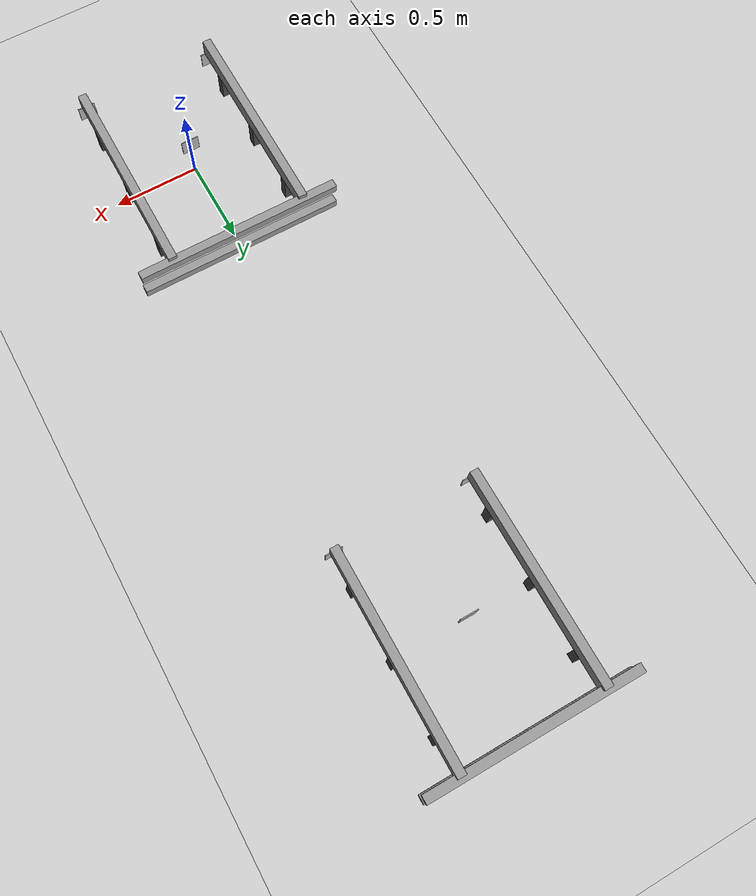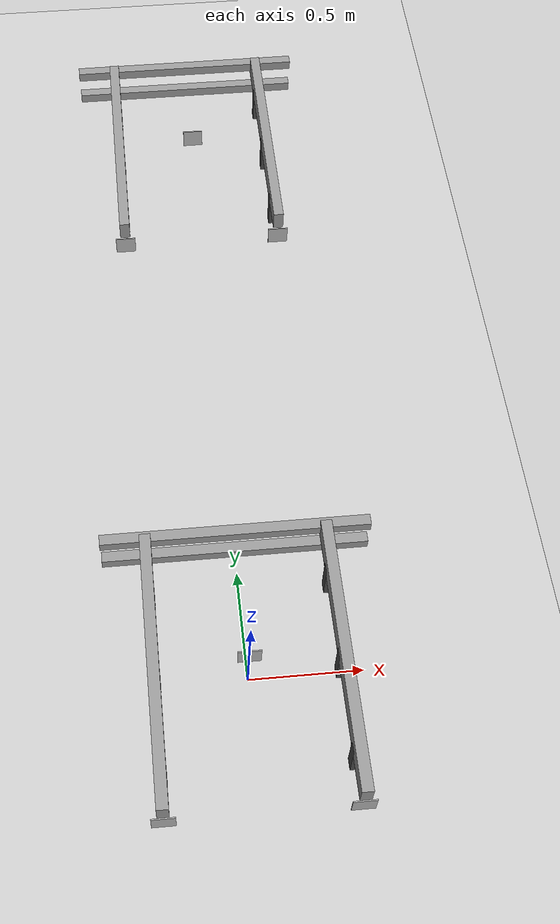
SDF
<?xml version="1.0" ?>
<sdf version="1.9">
  <world name="docking_world">

    <scene>
      <shadows>false</shadows>
    </scene>
    <light name="sun_direct" type="directional">
      <cast_shadows>false</cast_shadows>
      <pose>0 0 10 0 0 0</pose>
      <diffuse>1 1 1 1</diffuse>
      <specular>0.2 0.2 0.2 1</specular>
      <direction>-0.5 0.1 -1</direction>
    </light>
    <plugin filename="gz-sim-physics-system" name="gz::sim::systems::Physics"/>
    <plugin filename="gz-sim-scene-broadcaster-system" name="gz::sim::systems::SceneBroadcaster">
      <dynamic_pose_hertz>30</dynamic_pose_hertz>
      <state_hertz>30</state_hertz>
    </plugin>
    <plugin filename="gz-sim-sensors-system" name="gz::sim::systems::Sensors">
      <render_engine>ogre2</render_engine>
    </plugin>
    <plugin filename="gz-sim-user-commands-system" name="gz::sim::systems::UserCommands"/>
    <include>
      <uri>https://fuel.gazebosim.org/1.0/OpenRobotics/models/Ground%20Plane</uri>
    </include>
    <include>
      <uri>model://docking_whycode</uri>
      <pose>0 0 0 0 0 0</pose>
    </include>

    <include>
      <uri>model://docking_april</uri>
      <pose>0 3 0 0 0 0</pose>
    </include>
  </world>
</sdf>

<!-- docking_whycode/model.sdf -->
<sdf version='1.9'>
  <model name='docking_whycode'>
    <link name='base_link'>
      <pose>0 0 0.1 0 3.14 0</pose>

      <visual name='base_plate_visual'>
        <pose>-0.4 0 -0.11 0 1.57 0</pose>
        <geometry>
          <box>
            <size>0.1 1.2 0.05</size>
          </box>
        </geometry>
        <material>
          <script>
            <uri>file://media/materials/scripts/gazebo.material</uri>
            <name>Gazebo/Gray</name>
          </script>
        </material>
      </visual>
      <collision name='base_plate_collision'>
        <pose>-0.4 0 -0.11 0 1.57 0</pose>
        <geometry>
          <box>
            <size>0.1 1.2 0.05</size>
          </box>
        </geometry>
      </collision>

      <visual name='base_plate_visual2'>
        <pose>0.4 0 -0.11 0 1.57 0</pose>
        <geometry>
          <box>
            <size>0.1 1.2 0.05</size>
          </box>
        </geometry>
        <material>
          <script>
            <uri>file://media/materials/scripts/gazebo.material</uri>
            <name>Gazebo/Gray</name>
          </script>
        </material>
      </visual>
      <collision name='base_plate_collision2'>
        <pose>0.4 0 -0.11 0 1.57 0</pose>
        <geometry>
          <box>
            <size>0.1 1.2 0.05</size>
          </box>
        </geometry>
      </collision>

      <visual name='pillar_1_visual'>
        <pose>0.4 -0.4 0.0 0 0 0</pose>
        <geometry>
          <box>
            <size>0.05 0.05 0.2</size>
          </box>
        </geometry>
        <material>
          <script>
            <uri>file://media/materials/scripts/gazebo.material</uri>
            <name>Gazebo/DarkGrey</name>
          </script>
        </material>
      </visual>
      <collision name='pillar_1_collision'>
        <pose>0.4 -0.4 0.0 0 0 0</pose>
        <geometry>
          <box>
            <size>0.05 0.05 0.2</size>
          </box>
        </geometry>
      </collision>

      <visual name='pillar_2_visual'>
        <pose>0.4 0.0 0.0 0 0 0</pose>
        <geometry>
          <box>
            <size>0.05 0.05 0.2</size>
          </box>
        </geometry>
        <material>
          <script>
            <uri>file://media/materials/scripts/gazebo.material</uri>
            <name>Gazebo/DarkGrey</name>
          </script>
        </material>
      </visual>
      <collision name='pillar_2_collision'>
        <pose>0.4 0.0 0.0 0 0 0</pose>
        <geometry>
          <box>
            <size>0.05 0.05 0.2</size>
          </box>
        </geometry>
      </collision>

      <visual name='pillar_3_visual'>
        <pose>0.4 0.4 0.0 0 0 0</pose>
        <geometry>
          <box>
            <size>0.05 0.05 0.2</size>
          </box>
        </geometry>
        <material>
          <script>
            <uri>file://media/materials/scripts/gazebo.material</uri>
            <name>Gazebo/DarkGrey</name>
          </script>
        </material>
      </visual>
      <collision name='pillar_3_collision'>
        <pose>0.4 0.4 0.0 0 0 0</pose>
        <geometry>
          <box>
            <size>0.05 0.05 0.2</size>
          </box>
        </geometry>
      </collision>

  <!-- Second row of pillars (row at x = -0.4, mirrored to the first row). -->
      <visual name='pillar_4_visual'>
        <pose>-0.4 -0.4 0.0 0 0 0</pose>
        <geometry>
          <box>
            <size>0.05 0.05 0.2</size>
          </box>
        </geometry>
        <material>
          <script>
            <uri>file://media/materials/scripts/gazebo.material</uri>
            <name>Gazebo/DarkGrey</name>
          </script>
        </material>
      </visual>
      <collision name='pillar_4_collision'>
        <pose>-0.4 -0.4 0.0 0 0 0</pose>
        <geometry>
          <box>
            <size>0.05 0.05 0.2</size>
          </box>
        </geometry>
      </collision>

      <visual name='pillar_5_visual'>
        <pose>-0.4 0.0 0.0 0 0 0</pose>
        <geometry>
          <box>
            <size>0.05 0.05 0.2</size>
          </box>
        </geometry>
        <material>
          <script>
            <uri>file://media/materials/scripts/gazebo.material</uri>
            <name>Gazebo/DarkGrey</name>
          </script>
        </material>
      </visual>
      <collision name='pillar_5_collision'>
        <pose>-0.4 0.0 0.0 0 0 0</pose>
        <geometry>
          <box>
            <size>0.05 0.05 0.2</size>
          </box>
        </geometry>
      </collision>

      <visual name='pillar_6_visual'>
        <pose>-0.4 0.4 0.0 0 0 0</pose>
        <geometry>
          <box>
            <size>0.05 0.05 0.2</size>
          </box>
        </geometry>
        <material>
          <script>
            <uri>file://media/materials/scripts/gazebo.material</uri>
            <name>Gazebo/DarkGrey</name>
          </script>
        </material>
      </visual>
      <collision name='pillar_6_collision'>
        <pose>-0.4 0.4 0.0 0 0 0</pose>
        <geometry>
          <box>
            <size>0.05 0.05 0.2</size>
          </box>
        </geometry>
      </collision>

  <!-- Back plates (vertical plates behind the pillars).
       Two thin box plates at y = +0.6 and z offsets -0.11 and +0.05 respectively.
       Each plate is 0.05 x 1.2 x 0.05 m and uses Gazebo gray. -->
      <visual name='back_plate1_visual'>
        <pose>0 0.6 -0.11 0 0 1.57</pose>
        <geometry>
          <box>
            <size>0.05 1.2 0.05</size>
          </box>
        </geometry>
        <material>
          <script>
            <uri>file://media/materials/scripts/gazebo.material</uri>
            <name>Gazebo/Gray</name>
          </script>
        </material>
      </visual>
      <collision name='back_plate1_collision'>
        <pose>0 0.6 -0.11 0 0 1.57</pose>
        <geometry>
          <box>
            <size>0.05 1.2 0.05</size>
          </box>
        </geometry>
      </collision>
      <visual name='back_plate2_visual'>
        <pose>0 0.6 0.05 0 0 1.57</pose>
        <geometry>
          <box>
            <size>0.05 1.2 0.05</size>
          </box>
        </geometry>
        <material>
          <script>
            <uri>file://media/materials/scripts/gazebo.material</uri>
            <name>Gazebo/Gray</name>
          </script>
        </material>
      </visual>
      <collision name='back_plate2_collision'>
        <pose>0 0.6 0.05 0 0 1.57</pose>
        <geometry>
          <box>
            <size>0.05 1.2 0.05</size>
          </box>
        </geometry>
      </collision>

   <visual name='marker_plate'>
     <!-- Pose corresponds to the visual below (x=+0.4, y=-0.6, z=0) with rotations
       that orient the texture toward the expected camera/view direction. -->
     <pose>0.4 -0.6 0 0 3.14 1.57</pose>
        <geometry>
          <!-- thin along X, wide along Y, tall along Z -->
          <box>
            <size>0.005 0.10 0.10</size>
          </box>
        </geometry>
        <material>
  <pbr>
    <metal>
      <albedo_map>model://WhyCode_1/materials/textures/whycode_1.png</albedo_map>
      <emissive_map>model://WhyCode_1/materials/textures/whycode_1.png</emissive_map>
      <roughness>1.0</roughness>
      <metalness>0.0</metalness>
    </metal>
  </pbr>
</material>
      </visual>

   <!-- Marker plate 2: mirror image of marker_plate on the opposite X side.
     Uses WhyCode_2 materials and textures. Pose at x = -0.4, y = -0.6. -->
   <visual name='marker_plate2'>
     <!-- Pose corresponds to the visual below (x=-0.4, y=-0.6, z=0). -->
     <pose>-0.4 -0.6 0 0 3.14 1.57</pose>
        <geometry>
          <!-- thin along X, wide along Y, tall along Z -->
          <box>
            <size>0.005 0.10 0.10</size>
          </box>
        </geometry>
        <material>
  <pbr>
    <metal>
      <albedo_map>model://WhyCode_2/materials/textures/whycode_2.png</albedo_map>
      <emissive_map>model://WhyCode_2/materials/textures/whycode_2.png</emissive_map>
      <roughness>1.0</roughness>
      <metalness>0.0</metalness>
    </metal>
  </pbr>
</material>
      </visual>

   <!-- Marker plate 3: a third vertical plate centered roughly at the link origin
     (x=0) with a small downward z offset (z=-0.15). Uses WhyCode_3 textures. -->
   <visual name='marker_plate3'>
     <!-- Pose places this plate at x=0, y=0, z=-0.15 and rotates it so the texture is
       visible in the expected viewing direction. -->
     <pose>0 0 -0.15 0 3.14 1.57</pose>
        <geometry>
          <!-- thin along X, wide along Y, tall along Z -->
          <box>
            <size>0.005 0.10 0.10</size>
          </box>
        </geometry>
        <material>
  <pbr>
    <metal>
      <albedo_map>model://WhyCode_3/materials/textures/whycode_3.png</albedo_map>
      <emissive_map>model://WhyCode_3/materials/textures/whycode_3.png</emissive_map>
      <roughness>1.0</roughness>
      <metalness>0.0</metalness>
    </metal>
  </pbr>
</material>
      </visual>

    </link>
    <static>1</static>
  </model>
</sdf>

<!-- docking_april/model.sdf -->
<sdf version='1.9'>
  <model name='docking_april'>
    <link name='base_link'>
      <pose>0 0 0.1 0 3.14 0</pose>

      <visual name='base_plate_visual'>
        <pose>-0.4 0 -0.11 0 1.57 0</pose>
        <geometry>
          <box>
            <size>0.1 1.2 0.05</size>
          </box>
        </geometry>
        <material>
          <script>
            <uri>file://media/materials/scripts/gazebo.material</uri>
            <name>Gazebo/Gray</name>
          </script>
        </material>
      </visual>
      <collision name='base_plate_collision'>
        <pose>-0.4 0 -0.11 0 1.57 0</pose>
        <geometry>
          <box>
            <size>0.1 1.2 0.05</size>
          </box>
        </geometry>
      </collision>

      <visual name='base_plate_visual2'>
        <pose>0.4 0 -0.11 0 1.57 0</pose>
        <geometry>
          <box>
            <size>0.1 1.2 0.05</size>
          </box>
        </geometry>
        <material>
          <script>
            <uri>file://media/materials/scripts/gazebo.material</uri>
            <name>Gazebo/Gray</name>
          </script>
        </material>
      </visual>
      <collision name='base_plate_collision2'>
        <pose>0.4 0 -0.11 0 1.57 0</pose>
        <geometry>
          <box>
            <size>0.1 1.2 0.05</size>
          </box>
        </geometry>
      </collision>

      <visual name='pillar_1_visual'>
        <pose>0.4 -0.4 0.0 0 0 0</pose>
        <geometry>
          <box>
            <size>0.05 0.05 0.2</size>
          </box>
        </geometry>
        <material>
          <script>
            <uri>file://media/materials/scripts/gazebo.material</uri>
            <name>Gazebo/DarkGrey</name>
          </script>
        </material>
      </visual>
      <collision name='pillar_1_collision'>
        <pose>0.4 -0.4 0.0 0 0 0</pose>
        <geometry>
          <box>
            <size>0.05 0.05 0.2</size>
          </box>
        </geometry>
      </collision>

      <visual name='pillar_2_visual'>
        <pose>0.4 0.0 0.0 0 0 0</pose>
        <geometry>
          <box>
            <size>0.05 0.05 0.2</size>
          </box>
        </geometry>
        <material>
          <script>
            <uri>file://media/materials/scripts/gazebo.material</uri>
            <name>Gazebo/DarkGrey</name>
          </script>
        </material>
      </visual>
      <collision name='pillar_2_collision'>
        <pose>0.4 0.0 0.0 0 0 0</pose>
        <geometry>
          <box>
            <size>0.05 0.05 0.2</size>
          </box>
        </geometry>
      </collision>

      <visual name='pillar_3_visual'>
        <pose>0.4 0.4 0.0 0 0 0</pose>
        <geometry>
          <box>
            <size>0.05 0.05 0.2</size>
          </box>
        </geometry>
        <material>
          <script>
            <uri>file://media/materials/scripts/gazebo.material</uri>
            <name>Gazebo/DarkGrey</name>
          </script>
        </material>
      </visual>
      <collision name='pillar_3_collision'>
        <pose>0.4 0.4 0.0 0 0 0</pose>
        <geometry>
          <box>
            <size>0.05 0.05 0.2</size>
          </box>
        </geometry>
      </collision>

  <!-- Second row of pillars (row at x = -0.4, mirrored to the first row). -->
      <visual name='pillar_4_visual'>
        <pose>-0.4 -0.4 0.0 0 0 0</pose>
        <geometry>
          <box>
            <size>0.05 0.05 0.2</size>
          </box>
        </geometry>
        <material>
          <script>
            <uri>file://media/materials/scripts/gazebo.material</uri>
            <name>Gazebo/DarkGrey</name>
          </script>
        </material>
      </visual>
      <collision name='pillar_4_collision'>
        <pose>-0.4 -0.4 0.0 0 0 0</pose>
        <geometry>
          <box>
            <size>0.05 0.05 0.2</size>
          </box>
        </geometry>
      </collision>

      <visual name='pillar_5_visual'>
        <pose>-0.4 0.0 0.0 0 0 0</pose>
        <geometry>
          <box>
            <size>0.05 0.05 0.2</size>
          </box>
        </geometry>
        <material>
          <script>
            <uri>file://media/materials/scripts/gazebo.material</uri>
            <name>Gazebo/DarkGrey</name>
          </script>
        </material>
      </visual>
      <collision name='pillar_5_collision'>
        <pose>-0.4 0.0 0.0 0 0 0</pose>
        <geometry>
          <box>
            <size>0.05 0.05 0.2</size>
          </box>
        </geometry>
      </collision>

      <visual name='pillar_6_visual'>
        <pose>-0.4 0.4 0.0 0 0 0</pose>
        <geometry>
          <box>
            <size>0.05 0.05 0.2</size>
          </box>
        </geometry>
        <material>
          <script>
            <uri>file://media/materials/scripts/gazebo.material</uri>
            <name>Gazebo/DarkGrey</name>
          </script>
        </material>
      </visual>
      <collision name='pillar_6_collision'>
        <pose>-0.4 0.4 0.0 0 0 0</pose>
        <geometry>
          <box>
            <size>0.05 0.05 0.2</size>
          </box>
        </geometry>
      </collision>

  <!-- Back plates (vertical plates behind the pillars).
       Two thin box plates at y = +0.6 and z offsets -0.11 and +0.05 respectively.
       Each plate is 0.05 x 1.2 x 0.05 m and uses Gazebo gray. -->
      <visual name='back_plate1_visual'>
        <pose>0 0.6 -0.11 0 0 1.57</pose>
        <geometry>
          <box>
            <size>0.05 1.2 0.05</size>
          </box>
        </geometry>
        <material>
          <script>
            <uri>file://media/materials/scripts/gazebo.material</uri>
            <name>Gazebo/Gray</name>
          </script>
        </material>
      </visual>
      <collision name='back_plate1_collision'>
        <pose>0 0.6 -0.11 0 0 1.57</pose>
        <geometry>
          <box>
            <size>0.05 1.2 0.05</size>
          </box>
        </geometry>
      </collision>
      <visual name='back_plate2_visual'>
        <pose>0 0.6 0.05 0 0 1.57</pose>
        <geometry>
          <box>
            <size>0.05 1.2 0.05</size>
          </box>
        </geometry>
        <material>
          <script>
            <uri>file://media/materials/scripts/gazebo.material</uri>
            <name>Gazebo/Gray</name>
          </script>
        </material>
      </visual>
      <collision name='back_plate2_collision'>
        <pose>0 0.6 0.05 0 0 1.57</pose>
        <geometry>
          <box>
            <size>0.05 1.2 0.05</size>
          </box>
        </geometry>
      </collision>

   <visual name='marker_plate'>
     <!-- Pose corresponds to the visual below (x=+0.4, y=-0.6, z=0) with rotations
       that orient the texture toward the expected camera/view direction. -->
     <pose>0.4 -0.6 0 0 3.14 1.57</pose>
        <geometry>
          <!-- thin along X, wide along Y, tall along Z -->
          <box>
            <size>0.005 0.10 0.10</size>
          </box>
        </geometry>
        <material>
  <pbr>
    <metal>
      <albedo_map>model://Apriltag36_11_00000/materials/textures/tag36_11_00000.png</albedo_map>
      <emissive_map>model://Apriltag36_11_00000/materials/textures/tag36_11_00000.png</emissive_map>
      <roughness>1.0</roughness>
      <metalness>0.0</metalness>
    </metal>
  </pbr>
</material>
      </visual>

   <!-- Marker plate 2: mirror image of marker_plate on the opposite X side.
     Uses AprilTag_2 materials and textures. Pose at x = -0.4, y = -0.6. -->
   <visual name='marker_plate2'>
     <!-- Pose corresponds to the visual below (x=-0.4, y=-0.6, z=0). -->
     <pose>-0.4 -0.6 0 0 3.14 1.57</pose>
        <geometry>
          <!-- thin along X, wide along Y, tall along Z -->
          <box>
            <size>0.005 0.10 0.10</size>
          </box>
        </geometry>
        <material>
  <pbr>
    <metal>
      <albedo_map>model://Apriltag36_11_00001/materials/textures/tag36_11_00001.png</albedo_map>
      <emissive_map>model://Apriltag36_11_00001/materials/textures/tag36_11_00001.png</emissive_map>
      <roughness>1.0</roughness>
      <metalness>0.0</metalness>
    </metal>
  </pbr>
</material>
      </visual>

   <!-- Marker plate 3: a third vertical plate centered roughly at the link origin
     (x=0) with a small downward z offset (z=-0.15). Uses AprilTag_3 textures. -->
   <visual name='marker_plate3'>
     <!-- Pose places this plate at x=0, y=0, z=-0.15 and rotates it so the texture is
       visible in the expected viewing direction. -->
     <pose>0 0 -0.15 0 3.14 1.57</pose>
        <geometry>
          <!-- thin along X, wide along Y, tall along Z -->
          <box>
            <size>0.005 0.10 0.10</size>
          </box>
        </geometry>
        <material>
  <pbr>
    <metal>
      <albedo_map>model://Apriltag36_11_00002/materials/textures/tag36_11_00002.png</albedo_map>
      <emissive_map>model://Apriltag36_11_00002/materials/textures/tag36_11_00002.png</emissive_map>
      <roughness>1.0</roughness>
      <metalness>0.0</metalness>
    </metal>
  </pbr>
</material>
      </visual>

    </link>
    <static>1</static>
  </model>
</sdf>
